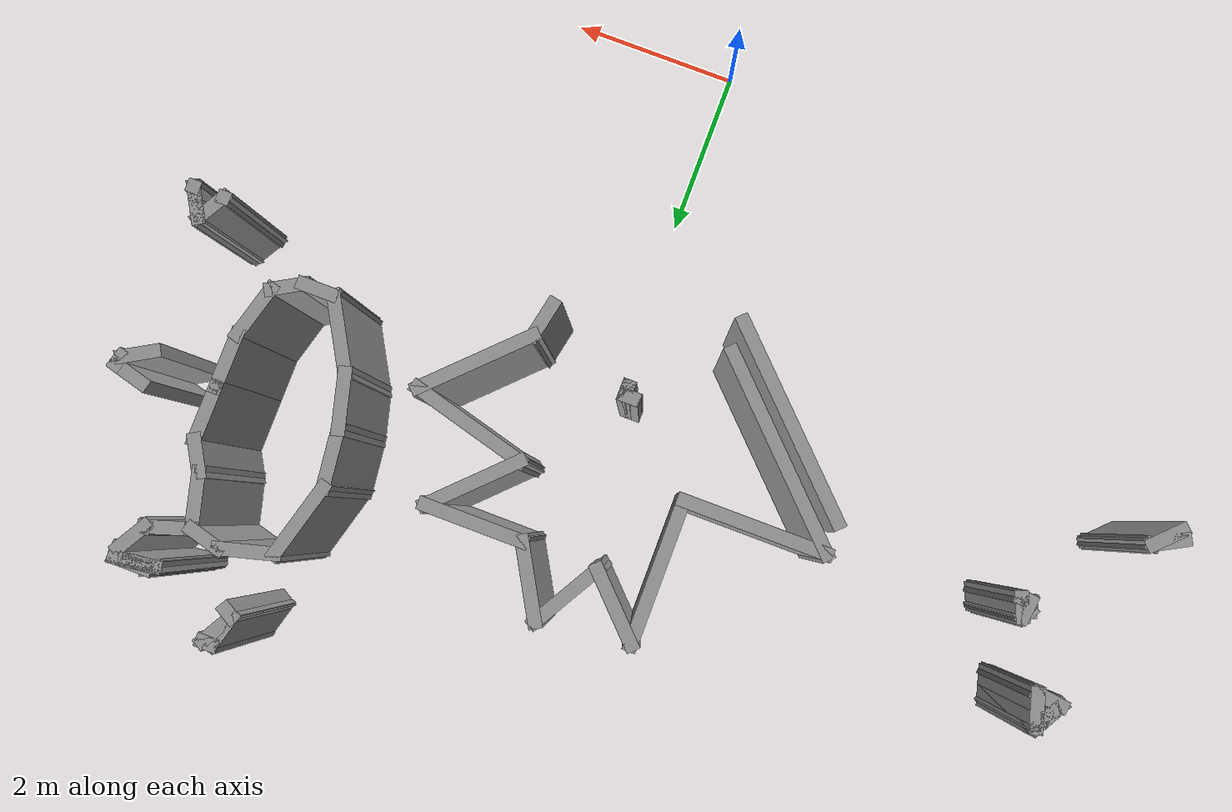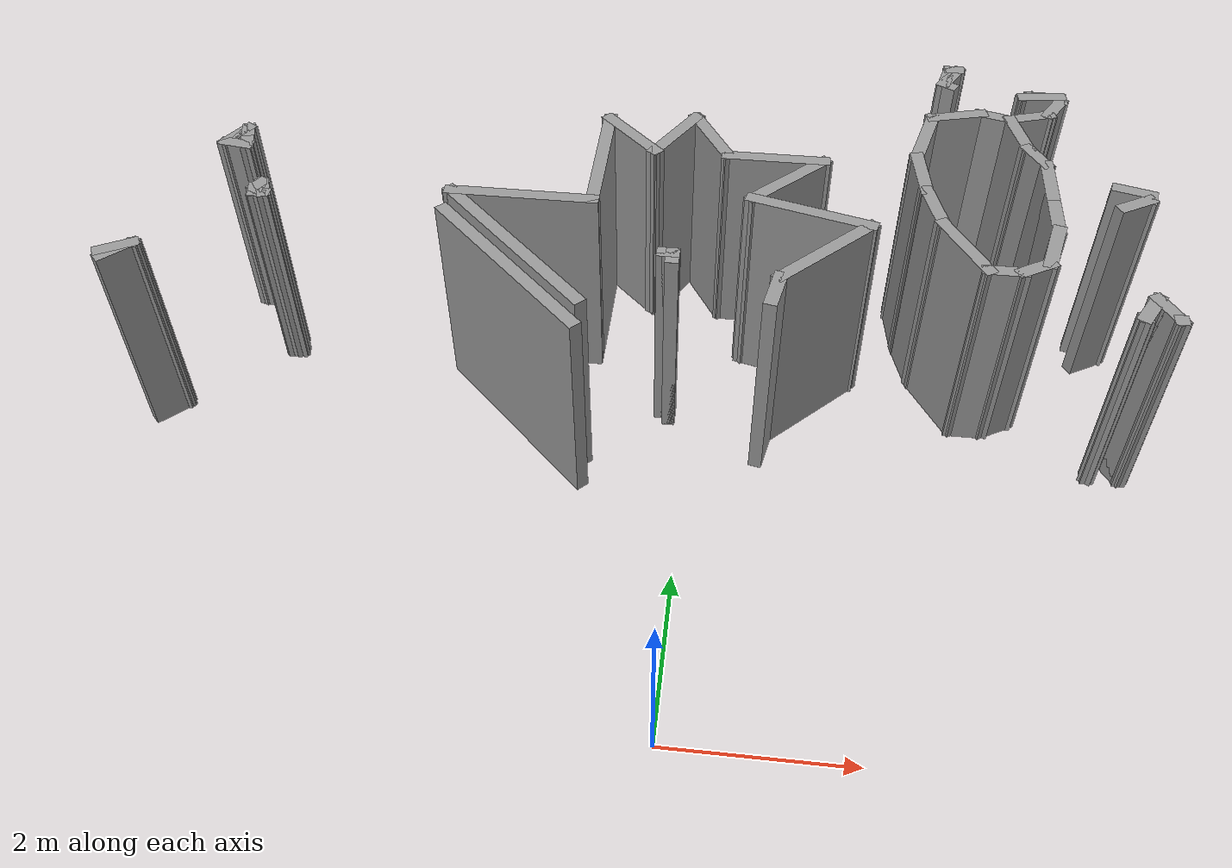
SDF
<sdf version="1.6">
 <model name="phenix">
  <pose>1.26432 -3.5 0 0 -0 4.71</pose>
  <link name="Wall_1">
   <collision name="Wall_1_Collision">
    <geometry><box><size>1.5 0.15 2.5</size></box></geometry>
    <pose>0 0 1.25 0 -0 0</pose>
   </collision>
   <visual name="Wall_1_Visual">
    <pose>0 0 1.25 0 -0 0</pose>
    <geometry><box><size>1.5 0.15 2.5</size></box></geometry>
    <material>
     <script><uri>file://media/materials/scripts/gazebo.material</uri><name>Gazebo/Grey</name></script>
     <ambient>1 1 1 1</ambient>
    </material>
    <meta><layer>0</layer></meta>
   </visual>
   <pose>-8.07336 0.091289 0 0 -0 2.35619</pose>
  </link>
  <link name="Wall_10">
   <collision name="Wall_10_Collision">
    <geometry><box><size>2.5 0.15 2.5</size></box></geometry>
    <pose>0 0 1.25 0 -0 0</pose>
   </collision>
   <visual name="Wall_10_Visual">
    <pose>0 0 1.25 0 -0 0</pose>
    <geometry><box><size>2.5 0.15 2.5</size></box></geometry>
    <material>
     <script><uri>file://media/materials/scripts/gazebo.material</uri><name>Gazebo/Grey</name></script>
     <ambient>1 1 1 1</ambient>
    </material>
    <meta><layer>0</layer></meta>
   </visual>
   <pose>-7.84807 -3.27779 0 0 -0 0.785398</pose>
  </link>
  <link name="Wall_100">
   <collision name="Wall_100_Collision">
    <geometry><box><size>0.5 0.15 2.5</size></box></geometry>
    <pose>0 0 1.25 0 -0 0</pose>
   </collision>
   <visual name="Wall_100_Visual">
    <pose>0 0 1.25 0 -0 0</pose>
    <geometry><box><size>0.5 0.15 2.5</size></box></geometry>
    <material>
     <script><uri>file://media/materials/scripts/gazebo.material</uri><name>Gazebo/Grey</name></script>
     <ambient>1 1 1 1</ambient>
    </material>
    <meta><layer>0</layer></meta>
   </visual>
   <pose>-7.51869 3.36784 0 0 -0 -0.523599</pose>
  </link>
  <link name="Wall_101">
   <collision name="Wall_101_Collision">
    <geometry><box><size>0.15 0.15 2.5</size></box></geometry>
    <pose>0 0 1.25 0 -0 0</pose>
   </collision>
   <visual name="Wall_101_Visual">
    <pose>0 0 1.25 0 -0 0</pose>
    <geometry><box><size>0.15 0.15 2.5</size></box></geometry>
    <material>
     <script><uri>file://media/materials/scripts/gazebo.material</uri><name>Gazebo/Grey</name></script>
     <ambient>1 1 1 1</ambient>
    </material>
    <meta><layer>0</layer></meta>
   </visual>
   <pose>-7.36714 3.28034 0 0 -0 0</pose>
  </link>
  <link name="Wall_115">
   <collision name="Wall_115_Collision">
    <geometry><box><size>0.25 0.15 2.5</size></box></geometry>
    <pose>0 0 1.25 0 -0 0</pose>
   </collision>
   <visual name="Wall_115_Visual">
    <pose>0 0 1.25 0 -0 0</pose>
    <geometry><box><size>0.25 0.15 2.5</size></box></geometry>
    <material>
     <script><uri>file://media/materials/scripts/gazebo.material</uri><name>Gazebo/Grey</name></script>
     <ambient>1 1 1 1</ambient>
    </material>
    <meta><layer>0</layer></meta>
   </visual>
   <pose>-9.55478 -6.74044 0 0 -0 0.261799</pose>
  </link>
  <link name="Wall_116">
   <collision name="Wall_116_Collision">
    <geometry><box><size>0.25 0.15 2.5</size></box></geometry>
    <pose>0 0 1.25 0 -0 0</pose>
   </collision>
   <visual name="Wall_116_Visual">
    <pose>0 0 1.25 0 -0 0</pose>
    <geometry><box><size>0.25 0.15 2.5</size></box></geometry>
    <material>
     <script><uri>file://media/materials/scripts/gazebo.material</uri><name>Gazebo/Grey</name></script>
     <ambient>1 1 1 1</ambient>
    </material>
    <meta><layer>0</layer></meta>
   </visual>
   <pose>-9.55478 -6.74044 0 0 -0 -2.87979</pose>
  </link>
  <link name="Wall_117">
   <collision name="Wall_117_Collision">
    <geometry><box><size>0.25 0.15 2.5</size></box></geometry>
    <pose>0 0 1.25 0 -0 0</pose>
   </collision>
   <visual name="Wall_117_Visual">
    <pose>0 0 1.25 0 -0 0</pose>
    <geometry><box><size>0.25 0.15 2.5</size></box></geometry>
    <material>
     <script><uri>file://media/materials/scripts/gazebo.material</uri><name>Gazebo/Grey</name></script>
     <ambient>1 1 1 1</ambient>
    </material>
    <meta><layer>0</layer></meta>
   </visual>
   <pose>-9.55478 -6.74044 0 0 -0 0.261799</pose>
  </link>
  <link name="Wall_118">
   <collision name="Wall_118_Collision">
    <geometry><box><size>0.25 0.15 2.5</size></box></geometry>
    <pose>0 0 1.25 0 -0 0</pose>
   </collision>
   <visual name="Wall_118_Visual">
    <pose>0 0 1.25 0 -0 0</pose>
    <geometry><box><size>0.25 0.15 2.5</size></box></geometry>
    <material>
     <script><uri>file://media/materials/scripts/gazebo.material</uri><name>Gazebo/Grey</name></script>
     <ambient>1 1 1 1</ambient>
    </material>
    <meta><layer>0</layer></meta>
   </visual>
   <pose>-9.55478 -6.74044 0 0 -0 -2.87979</pose>
  </link>
  <link name="Wall_119">
   <collision name="Wall_119_Collision">
    <geometry><box><size>0.5 0.15 2.5</size></box></geometry>
    <pose>0 0 1.25 0 -0 0</pose>
   </collision>
   <visual name="Wall_119_Visual">
    <pose>0 0 1.25 0 -0 0</pose>
    <geometry><box><size>0.5 0.15 2.5</size></box></geometry>
    <material>
     <script><uri>file://media/materials/scripts/gazebo.material</uri><name>Gazebo/Grey</name></script>
     <ambient>1 1 1 1</ambient>
    </material>
    <meta><layer>0</layer></meta>
   </visual>
   <pose>-9.45152 -6.84088 0 0 -0 -0.523599</pose>
  </link>
  <link name="Wall_12">
   <collision name="Wall_12_Collision">
    <geometry><box><size>2.5 0.15 2.5</size></box></geometry>
    <pose>0 0 1.25 0 -0 0</pose>
   </collision>
   <visual name="Wall_12_Visual">
    <pose>0 0 1.25 0 -0 0</pose>
    <geometry><box><size>2.5 0.15 2.5</size></box></geometry>
    <material>
     <script><uri>file://media/materials/scripts/gazebo.material</uri><name>Gazebo/Grey</name></script>
     <ambient>1 1 1 1</ambient>
    </material>
    <meta><layer>0</layer></meta>
   </visual>
   <pose>-7.49807 -3.27779 0 0 -0 -2.35619</pose>
  </link>
  <link name="Wall_120">
   <collision name="Wall_120_Collision">
    <geometry><box><size>0.5 0.15 2.5</size></box></geometry>
    <pose>0 0 1.25 0 -0 0</pose>
   </collision>
   <visual name="Wall_120_Visual">
    <pose>0 0 1.25 0 -0 0</pose>
    <geometry><box><size>0.5 0.15 2.5</size></box></geometry>
    <material>
     <script><uri>file://media/materials/scripts/gazebo.material</uri><name>Gazebo/Grey</name></script>
     <ambient>1 1 1 1</ambient>
    </material>
    <meta><layer>0</layer></meta>
   </visual>
   <pose>-9.45152 -6.84088 0 0 -0 2.61799</pose>
  </link>
  <link name="Wall_121">
   <collision name="Wall_121_Collision">
    <geometry><box><size>0.5 0.15 2.5</size></box></geometry>
    <pose>0 0 1.25 0 -0 0</pose>
   </collision>
   <visual name="Wall_121_Visual">
    <pose>0 0 1.25 0 -0 0</pose>
    <geometry><box><size>0.5 0.15 2.5</size></box></geometry>
    <material>
     <script><uri>file://media/materials/scripts/gazebo.material</uri><name>Gazebo/Grey</name></script>
     <ambient>1 1 1 1</ambient>
    </material>
    <meta><layer>0</layer></meta>
   </visual>
   <pose>-9.43404 -6.70809 0 0 -0 0.261799</pose>
  </link>
  <link name="Wall_122">
   <collision name="Wall_122_Collision">
    <geometry><box><size>0.417878 0.15 2.5</size></box></geometry>
    <pose>0 0 1.25 0 -0 0</pose>
   </collision>
   <visual name="Wall_122_Visual">
    <pose>0 0 1.25 0 -0 0</pose>
    <geometry><box><size>0.417878 0.15 2.5</size></box></geometry>
    <material>
     <script><uri>file://media/materials/scripts/gazebo.material</uri><name>Gazebo/Grey</name></script>
     <ambient>1 1 1 1</ambient>
    </material>
    <meta><layer>0</layer></meta>
   </visual>
   <pose>-9.28248 -6.79559 0 0 -0 -1.7017</pose>
  </link>
  <link name="Wall_124">
   <collision name="Wall_124_Collision">
    <geometry><box><size>0.25 0.15 2.5</size></box></geometry>
    <pose>0 0 1.25 0 -0 0</pose>
   </collision>
   <visual name="Wall_124_Visual">
    <pose>0 0 1.25 0 -0 0</pose>
    <geometry><box><size>0.25 0.15 2.5</size></box></geometry>
    <material>
     <script><uri>file://media/materials/scripts/gazebo.material</uri><name>Gazebo/Grey</name></script>
     <ambient>1 1 1 1</ambient>
    </material>
    <meta><layer>0</layer></meta>
   </visual>
   <pose>-8.53062 -6.28095 0 0 -0 -0.523599</pose>
  </link>
  <link name="Wall_125">
   <collision name="Wall_125_Collision">
    <geometry><box><size>0.25 0.15 2.5</size></box></geometry>
    <pose>0 0 1.25 0 -0 0</pose>
   </collision>
   <visual name="Wall_125_Visual">
    <pose>0 0 1.25 0 -0 0</pose>
    <geometry><box><size>0.25 0.15 2.5</size></box></geometry>
    <material>
     <script><uri>file://media/materials/scripts/gazebo.material</uri><name>Gazebo/Grey</name></script>
     <ambient>1 1 1 1</ambient>
    </material>
    <meta><layer>0</layer></meta>
   </visual>
   <pose>-8.43902 -6.29301 0 0 -0 0.261799</pose>
  </link>
  <link name="Wall_126">
   <collision name="Wall_126_Collision">
    <geometry><box><size>0.15 0.15 2.5</size></box></geometry>
    <pose>0 0 1.25 0 -0 0</pose>
   </collision>
   <visual name="Wall_126_Visual">
    <pose>0 0 1.25 0 -0 0</pose>
    <geometry><box><size>0.15 0.15 2.5</size></box></geometry>
    <material>
     <script><uri>file://media/materials/scripts/gazebo.material</uri><name>Gazebo/Grey</name></script>
     <ambient>1 1 1 1</ambient>
    </material>
    <meta><layer>0</layer></meta>
   </visual>
   <pose>-8.39072 -6.28007 0 0 -0 0</pose>
  </link>
  <link name="Wall_127">
   <collision name="Wall_127_Collision">
    <geometry><box><size>0.25 0.15 2.5</size></box></geometry>
    <pose>0 0 1.25 0 -0 0</pose>
   </collision>
   <visual name="Wall_127_Visual">
    <pose>0 0 1.25 0 -0 0</pose>
    <geometry><box><size>0.25 0.15 2.5</size></box></geometry>
    <material>
     <script><uri>file://media/materials/scripts/gazebo.material</uri><name>Gazebo/Grey</name></script>
     <ambient>1 1 1 1</ambient>
    </material>
    <meta><layer>0</layer></meta>
   </visual>
   <pose>-8.39072 -6.23007 0 0 -0 1.5708</pose>
  </link>
  <link name="Wall_128">
   <collision name="Wall_128_Collision">
    <geometry><box><size>0.25 0.15 2.5</size></box></geometry>
    <pose>0 0 1.25 0 -0 0</pose>
   </collision>
   <visual name="Wall_128_Visual">
    <pose>0 0 1.25 0 -0 0</pose>
    <geometry><box><size>0.25 0.15 2.5</size></box></geometry>
    <material>
     <script><uri>file://media/materials/scripts/gazebo.material</uri><name>Gazebo/Grey</name></script>
     <ambient>1 1 1 1</ambient>
    </material>
    <meta><layer>0</layer></meta>
   </visual>
   <pose>-8.39072 -6.23007 0 0 -0 -1.5708</pose>
  </link>
  <link name="Wall_129">
   <collision name="Wall_129_Collision">
    <geometry><box><size>0.334776 0.15 2.5</size></box></geometry>
    <pose>0 0 1.25 0 -0 0</pose>
   </collision>
   <visual name="Wall_129_Visual">
    <pose>0 0 1.25 0 -0 0</pose>
    <geometry><box><size>0.334776 0.15 2.5</size></box></geometry>
    <material>
     <script><uri>file://media/materials/scripts/gazebo.material</uri><name>Gazebo/Grey</name></script>
     <ambient>1 1 1 1</ambient>
    </material>
    <meta><layer>0</layer></meta>
   </visual>
   <pose>-8.48232 -6.26801 0 0 -0 3.01069</pose>
  </link>
  <link name="Wall_130">
   <collision name="Wall_130_Collision">
    <geometry><box><size>0.348289 0.15 2.5</size></box></geometry>
    <pose>0 0 1.25 0 -0 0</pose>
   </collision>
   <visual name="Wall_130_Visual">
    <pose>0 0 1.25 0 -0 0</pose>
    <geometry><box><size>0.348289 0.15 2.5</size></box></geometry>
    <material>
     <script><uri>file://media/materials/scripts/gazebo.material</uri><name>Gazebo/Grey</name></script>
     <ambient>1 1 1 1</ambient>
    </material>
    <meta><layer>0</layer></meta>
   </visual>
   <pose>-8.48232 -6.21801 0 0 -0 0.392699</pose>
  </link>
  <link name="Wall_133">
   <collision name="Wall_133_Collision">
    <geometry><box><size>0.5 0.15 2.5</size></box></geometry>
    <pose>0 0 1.25 0 -0 0</pose>
   </collision>
   <visual name="Wall_133_Visual">
    <pose>0 0 1.25 0 -0 0</pose>
    <geometry><box><size>0.5 0.15 2.5</size></box></geometry>
    <material>
     <script><uri>file://media/materials/scripts/gazebo.material</uri><name>Gazebo/Grey</name></script>
     <ambient>1 1 1 1</ambient>
    </material>
    <meta><layer>0</layer></meta>
   </visual>
   <pose>-7.25601 -7.42011 0 0 -0 2.35619</pose>
  </link>
  <link name="Wall_134">
   <collision name="Wall_134_Collision">
    <geometry><box><size>0.15 0.15 2.5</size></box></geometry>
    <pose>0 0 1.25 0 -0 0</pose>
   </collision>
   <visual name="Wall_134_Visual">
    <pose>0 0 1.25 0 -0 0</pose>
    <geometry><box><size>0.15 0.15 2.5</size></box></geometry>
    <material>
     <script><uri>file://media/materials/scripts/gazebo.material</uri><name>Gazebo/Grey</name></script>
     <ambient>1 1 1 1</ambient>
    </material>
    <meta><layer>0</layer></meta>
   </visual>
   <pose>-7.37975 -7.29637 0 0 -0 0</pose>
  </link>
  <link name="Wall_135">
   <collision name="Wall_135_Collision">
    <geometry><box><size>0.488205 0.15 2.5</size></box></geometry>
    <pose>0 0 1.25 0 -0 0</pose>
   </collision>
   <visual name="Wall_135_Visual">
    <pose>0 0 1.25 0 -0 0</pose>
    <geometry><box><size>0.488205 0.15 2.5</size></box></geometry>
    <material>
     <script><uri>file://media/materials/scripts/gazebo.material</uri><name>Gazebo/Grey</name></script>
     <ambient>1 1 1 1</ambient>
    </material>
    <meta><layer>0</layer></meta>
   </visual>
   <pose>-7.29931 -7.44511 0 0 -0 -1.07503</pose>
  </link>
  <link name="Wall_2">
   <collision name="Wall_2_Collision">
    <geometry><box><size>1.5 0.15 2.5</size></box></geometry>
    <pose>0 0 1.25 0 -0 0</pose>
   </collision>
   <visual name="Wall_2_Visual">
    <pose>0 0 1.25 0 -0 0</pose>
    <geometry><box><size>1.5 0.15 2.5</size></box></geometry>
    <material>
     <script><uri>file://media/materials/scripts/gazebo.material</uri><name>Gazebo/Grey</name></script>
     <ambient>1 1 1 1</ambient>
    </material>
    <meta><layer>0</layer></meta>
   </visual>
   <pose>-8.72536 -0.083414 0 0 -0 -1.8326</pose>
  </link>
  <link name="Wall_3">
   <collision name="Wall_3_Collision">
    <geometry><box><size>1.25 0.15 2.5</size></box></geometry>
    <pose>0 0 1.25 0 -0 0</pose>
   </collision>
   <visual name="Wall_3_Visual">
    <pose>0 0 1.25 0 -0 0</pose>
    <geometry><box><size>1.25 0.15 2.5</size></box></geometry>
    <material>
     <script><uri>file://media/materials/scripts/gazebo.material</uri><name>Gazebo/Grey</name></script>
     <ambient>1 1 1 1</ambient>
    </material>
    <meta><layer>0</layer></meta>
   </visual>
   <pose>-9.28897 -0.346505 0 0 -0 2.35619</pose>
  </link>
  <link name="Wall_36">
   <collision name="Wall_36_Collision">
    <geometry><box><size>0.542009 0.15 2.5</size></box></geometry>
    <pose>0 0 1.25 0 -0 0</pose>
   </collision>
   <visual name="Wall_36_Visual">
    <pose>0 0 1.25 0 -0 0</pose>
    <geometry><box><size>0.542009 0.15 2.5</size></box></geometry>
    <material>
     <script><uri>file://media/materials/scripts/gazebo.material</uri><name>Gazebo/Grey</name></script>
     <ambient>1 1 1 1</ambient>
    </material>
    <meta><layer>0</layer></meta>
   </visual>
   <pose>-7.40391 -0.424691 0 0 -0 2.94293</pose>
  </link>
  <link name="Wall_4">
   <collision name="Wall_4_Collision">
    <geometry><box><size>1.25 0.15 2.5</size></box></geometry>
    <pose>0 0 1.25 0 -0 0</pose>
   </collision>
   <visual name="Wall_4_Visual">
    <pose>0 0 1.25 0 -0 0</pose>
    <geometry><box><size>1.25 0.15 2.5</size></box></geometry>
    <material>
     <script><uri>file://media/materials/scripts/gazebo.material</uri><name>Gazebo/Grey</name></script>
     <ambient>1 1 1 1</ambient>
    </material>
    <meta><layer>0</layer></meta>
   </visual>
   <pose>-9.67788 -0.507597 0 0 -0 -1.5708</pose>
  </link>
  <link name="Wall_5">
   <collision name="Wall_5_Collision">
    <geometry><box><size>1 0.15 2.5</size></box></geometry>
    <pose>0 0 1.25 0 -0 0</pose>
   </collision>
   <visual name="Wall_5_Visual">
    <pose>0 0 1.25 0 -0 0</pose>
    <geometry><box><size>1 0.15 2.5</size></box></geometry>
    <material>
     <script><uri>file://media/materials/scripts/gazebo.material</uri><name>Gazebo/Grey</name></script>
     <ambient>1 1 1 1</ambient>
    </material>
    <meta><layer>0</layer></meta>
   </visual>
   <pose>-10.0459 -1.2701 0 0 -0 -2.61799</pose>
  </link>
  <link name="Wall_56">
   <collision name="Wall_56_Collision">
    <geometry><box><size>0.25 0.15 2.5</size></box></geometry>
    <pose>0 0 1.25 0 -0 0</pose>
   </collision>
   <visual name="Wall_56_Visual">
    <pose>0 0 1.25 0 -0 0</pose>
    <geometry><box><size>0.25 0.15 2.5</size></box></geometry>
    <material>
     <script><uri>file://media/materials/scripts/gazebo.material</uri><name>Gazebo/Grey</name></script>
     <ambient>1 1 1 1</ambient>
    </material>
    <meta><layer>0</layer></meta>
   </visual>
   <pose>-7.80391 -1.53104 0 0 -0 0</pose>
  </link>
  <link name="Wall_57">
   <collision name="Wall_57_Collision">
    <geometry><box><size>0.25 0.15 2.5</size></box></geometry>
    <pose>0 0 1.25 0 -0 0</pose>
   </collision>
   <visual name="Wall_57_Visual">
    <pose>0 0 1.25 0 -0 0</pose>
    <geometry><box><size>0.25 0.15 2.5</size></box></geometry>
    <material>
     <script><uri>file://media/materials/scripts/gazebo.material</uri><name>Gazebo/Grey</name></script>
     <ambient>1 1 1 1</ambient>
    </material>
    <meta><layer>0</layer></meta>
   </visual>
   <pose>-7.80391 -1.53104 0 0 -0 3.14159</pose>
  </link>
  <link name="Wall_58">
   <collision name="Wall_58_Collision">
    <geometry><box><size>0.25 0.15 2.5</size></box></geometry>
    <pose>0 0 1.25 0 -0 0</pose>
   </collision>
   <visual name="Wall_58_Visual">
    <pose>0 0 1.25 0 -0 0</pose>
    <geometry><box><size>0.25 0.15 2.5</size></box></geometry>
    <material>
     <script><uri>file://media/materials/scripts/gazebo.material</uri><name>Gazebo/Grey</name></script>
     <ambient>1 1 1 1</ambient>
    </material>
    <meta><layer>0</layer></meta>
   </visual>
   <pose>-7.85391 -1.58104 0 0 -0 -1.5708</pose>
  </link>
  <link name="Wall_59">
   <collision name="Wall_59_Collision">
    <geometry><box><size>0.15 0.15 2.5</size></box></geometry>
    <pose>0 0 1.25 0 -0 0</pose>
   </collision>
   <visual name="Wall_59_Visual">
    <pose>0 0 1.25 0 -0 0</pose>
    <geometry><box><size>0.15 0.15 2.5</size></box></geometry>
    <material>
     <script><uri>file://media/materials/scripts/gazebo.material</uri><name>Gazebo/Grey</name></script>
     <ambient>1 1 1 1</ambient>
    </material>
    <meta><layer>0</layer></meta>
   </visual>
   <pose>-7.85391 -1.63104 0 0 -0 0</pose>
  </link>
  <link name="Wall_6">
   <collision name="Wall_6_Collision">
    <geometry><box><size>1 0.15 2.5</size></box></geometry>
    <pose>0 0 1.25 0 -0 0</pose>
   </collision>
   <visual name="Wall_6_Visual">
    <pose>0 0 1.25 0 -0 0</pose>
    <geometry><box><size>1 0.15 2.5</size></box></geometry>
    <material>
     <script><uri>file://media/materials/scripts/gazebo.material</uri><name>Gazebo/Grey</name></script>
     <ambient>1 1 1 1</ambient>
    </material>
    <meta><layer>0</layer></meta>
   </visual>
   <pose>-10.0459 -1.6951 0 0 -0 -0.523599</pose>
  </link>
  <link name="Wall_61">
   <collision name="Wall_61_Collision">
    <geometry><box><size>1 0.15 2.5</size></box></geometry>
    <pose>0 0 1.25 0 -0 0</pose>
   </collision>
   <visual name="Wall_61_Visual">
    <pose>0 0 1.25 0 -0 0</pose>
    <geometry><box><size>1 0.15 2.5</size></box></geometry>
    <material>
     <script><uri>file://media/materials/scripts/gazebo.material</uri><name>Gazebo/Grey</name></script>
     <ambient>1 1 1 1</ambient>
    </material>
    <meta><layer>0</layer></meta>
   </visual>
   <pose>-10.3026 1.22452 0 0 -0 2.87979</pose>
  </link>
  <link name="Wall_62">
   <collision name="Wall_62_Collision">
    <geometry><box><size>0.75 0.15 2.5</size></box></geometry>
    <pose>0 0 1.25 0 -0 0</pose>
   </collision>
   <visual name="Wall_62_Visual">
    <pose>0 0 1.25 0 -0 0</pose>
    <geometry><box><size>0.75 0.15 2.5</size></box></geometry>
    <material>
     <script><uri>file://media/materials/scripts/gazebo.material</uri><name>Gazebo/Grey</name></script>
     <ambient>1 1 1 1</ambient>
    </material>
    <meta><layer>0</layer></meta>
   </visual>
   <pose>-10.7907 1.62429 0 0 -0 1.8326</pose>
  </link>
  <link name="Wall_63">
   <collision name="Wall_63_Collision">
    <geometry><box><size>0.5 0.15 2.5</size></box></geometry>
    <pose>0 0 1.25 0 -0 0</pose>
   </collision>
   <visual name="Wall_63_Visual">
    <pose>0 0 1.25 0 -0 0</pose>
    <geometry><box><size>0.5 0.15 2.5</size></box></geometry>
    <material>
     <script><uri>file://media/materials/scripts/gazebo.material</uri><name>Gazebo/Grey</name></script>
     <ambient>1 1 1 1</ambient>
    </material>
    <meta><layer>0</layer></meta>
   </visual>
   <pose>-10.8231 2.08311 0 0 -0 1.309</pose>
  </link>
  <link name="Wall_65">
   <collision name="Wall_65_Collision">
    <geometry><box><size>0.75 0.15 2.5</size></box></geometry>
    <pose>0 0 1.25 0 -0 0</pose>
   </collision>
   <visual name="Wall_65_Visual">
    <pose>0 0 1.25 0 -0 0</pose>
    <geometry><box><size>0.75 0.15 2.5</size></box></geometry>
    <material>
     <script><uri>file://media/materials/scripts/gazebo.material</uri><name>Gazebo/Grey</name></script>
     <ambient>1 1 1 1</ambient>
    </material>
    <meta><layer>0</layer></meta>
   </visual>
   <pose>-10.488 2.32979 0 0 -0 0.261799</pose>
  </link>
  <link name="Wall_66">
   <collision name="Wall_66_Collision">
    <geometry><box><size>0.5 0.15 2.5</size></box></geometry>
    <pose>0 0 1.25 0 -0 0</pose>
   </collision>
   <visual name="Wall_66_Visual">
    <pose>0 0 1.25 0 -0 0</pose>
    <geometry><box><size>0.5 0.15 2.5</size></box></geometry>
    <material>
     <script><uri>file://media/materials/scripts/gazebo.material</uri><name>Gazebo/Grey</name></script>
     <ambient>1 1 1 1</ambient>
    </material>
    <meta><layer>0</layer></meta>
   </visual>
   <pose>-10.0467 2.49493 0 0 -0 0.523599</pose>
  </link>
  <link name="Wall_67">
   <collision name="Wall_67_Collision">
    <geometry><box><size>0.75 0.15 2.5</size></box></geometry>
    <pose>0 0 1.25 0 -0 0</pose>
   </collision>
   <visual name="Wall_67_Visual">
    <pose>0 0 1.25 0 -0 0</pose>
    <geometry><box><size>0.75 0.15 2.5</size></box></geometry>
    <material>
     <script><uri>file://media/materials/scripts/gazebo.material</uri><name>Gazebo/Grey</name></script>
     <ambient>1 1 1 1</ambient>
    </material>
    <meta><layer>0</layer></meta>
   </visual>
   <pose>-9.59512 2.58243 0 0 -0 0</pose>
  </link>
  <link name="Wall_68">
   <collision name="Wall_68_Collision">
    <geometry><box><size>0.75 0.15 2.5</size></box></geometry>
    <pose>0 0 1.25 0 -0 0</pose>
   </collision>
   <visual name="Wall_68_Visual">
    <pose>0 0 1.25 0 -0 0</pose>
    <geometry><box><size>0.75 0.15 2.5</size></box></geometry>
    <material>
     <script><uri>file://media/materials/scripts/gazebo.material</uri><name>Gazebo/Grey</name></script>
     <ambient>1 1 1 1</ambient>
    </material>
    <meta><layer>0</layer></meta>
   </visual>
   <pose>-8.99512 2.58243 0 0 -0 0</pose>
  </link>
  <link name="Wall_69">
   <collision name="Wall_69_Collision">
    <geometry><box><size>0.75 0.15 2.5</size></box></geometry>
    <pose>0 0 1.25 0 -0 0</pose>
   </collision>
   <visual name="Wall_69_Visual">
    <pose>0 0 1.25 0 -0 0</pose>
    <geometry><box><size>0.75 0.15 2.5</size></box></geometry>
    <material>
     <script><uri>file://media/materials/scripts/gazebo.material</uri><name>Gazebo/Grey</name></script>
     <ambient>1 1 1 1</ambient>
    </material>
    <meta><layer>0</layer></meta>
   </visual>
   <pose>-8.40535 2.50479 0 0 -0 -0.261799</pose>
  </link>
  <link name="Wall_7">
   <collision name="Wall_7_Collision">
    <geometry><box><size>1 0.15 2.5</size></box></geometry>
    <pose>0 0 1.25 0 -0 0</pose>
   </collision>
   <visual name="Wall_7_Visual">
    <pose>0 0 1.25 0 -0 0</pose>
    <geometry><box><size>1 0.15 2.5</size></box></geometry>
    <material>
     <script><uri>file://media/materials/scripts/gazebo.material</uri><name>Gazebo/Grey</name></script>
     <ambient>1 1 1 1</ambient>
    </material>
    <meta><layer>0</layer></meta>
   </visual>
   <pose>-9.9784 -2.20812 0 0 -0 -2.35619</pose>
  </link>
  <link name="Wall_70">
   <collision name="Wall_70_Collision">
    <geometry><box><size>0.5 0.15 2.5</size></box></geometry>
    <pose>0 0 1.25 0 -0 0</pose>
   </collision>
   <visual name="Wall_70_Visual">
    <pose>0 0 1.25 0 -0 0</pose>
    <geometry><box><size>0.5 0.15 2.5</size></box></geometry>
    <material>
     <script><uri>file://media/materials/scripts/gazebo.material</uri><name>Gazebo/Grey</name></script>
     <ambient>1 1 1 1</ambient>
    </material>
    <meta><layer>0</layer></meta>
   </visual>
   <pose>-8.02807 2.27559 0 0 -0 -1.0472</pose>
  </link>
  <link name="Wall_71">
   <collision name="Wall_71_Collision">
    <geometry><box><size>0.5 0.15 2.5</size></box></geometry>
    <pose>0 0 1.25 0 -0 0</pose>
   </collision>
   <visual name="Wall_71_Visual">
    <pose>0 0 1.25 0 -0 0</pose>
    <geometry><box><size>0.5 0.15 2.5</size></box></geometry>
    <material>
     <script><uri>file://media/materials/scripts/gazebo.material</uri><name>Gazebo/Grey</name></script>
     <ambient>1 1 1 1</ambient>
    </material>
    <meta><layer>0</layer></meta>
   </visual>
   <pose>-7.94057 1.94903 0 0 -0 -1.5708</pose>
  </link>
  <link name="Wall_72">
   <collision name="Wall_72_Collision">
    <geometry><box><size>1 0.15 2.5</size></box></geometry>
    <pose>0 0 1.25 0 -0 0</pose>
   </collision>
   <visual name="Wall_72_Visual">
    <pose>0 0 1.25 0 -0 0</pose>
    <geometry><box><size>1 0.15 2.5</size></box></geometry>
    <material>
     <script><uri>file://media/materials/scripts/gazebo.material</uri><name>Gazebo/Grey</name></script>
     <ambient>1 1 1 1</ambient>
    </material>
    <meta><layer>0</layer></meta>
   </visual>
   <pose>-8.30863 1.56153 0 0 -0 -2.61799</pose>
  </link>
  <link name="Wall_73">
   <collision name="Wall_73_Collision">
    <geometry><box><size>0.75 0.15 2.5</size></box></geometry>
    <pose>0 0 1.25 0 -0 0</pose>
   </collision>
   <visual name="Wall_73_Visual">
    <pose>0 0 1.25 0 -0 0</pose>
    <geometry><box><size>0.75 0.15 2.5</size></box></geometry>
    <material>
     <script><uri>file://media/materials/scripts/gazebo.material</uri><name>Gazebo/Grey</name></script>
     <ambient>1 1 1 1</ambient>
    </material>
    <meta><layer>0</layer></meta>
   </visual>
   <pose>-8.96647 1.27139 0 0 -0 -2.87979</pose>
  </link>
  <link name="Wall_74">
   <collision name="Wall_74_Collision">
    <geometry><box><size>0.790718 0.15 2.5</size></box></geometry>
    <pose>0 0 1.25 0 -0 0</pose>
   </collision>
   <visual name="Wall_74_Visual">
    <pose>0 0 1.25 0 -0 0</pose>
    <geometry><box><size>0.790718 0.15 2.5</size></box></geometry>
    <material>
     <script><uri>file://media/materials/scripts/gazebo.material</uri><name>Gazebo/Grey</name></script>
     <ambient>1 1 1 1</ambient>
    </material>
    <meta><layer>0</layer></meta>
   </visual>
   <pose>-9.57415 1.15413 0 0 -0 -3.01762</pose>
  </link>
  <link name="Wall_76">
   <collision name="Wall_76_Collision">
    <geometry><box><size>0.5 0.15 2.5</size></box></geometry>
    <pose>0 0 1.25 0 -0 0</pose>
   </collision>
   <visual name="Wall_76_Visual">
    <pose>0 0 1.25 0 -0 0</pose>
    <geometry><box><size>0.5 0.15 2.5</size></box></geometry>
    <material>
     <script><uri>file://media/materials/scripts/gazebo.material</uri><name>Gazebo/Grey</name></script>
     <ambient>1 1 1 1</ambient>
    </material>
    <meta><layer>0</layer></meta>
   </visual>
   <pose>-11.6481 1.55656 0 0 -0 2.87979</pose>
  </link>
  <link name="Wall_77">
   <collision name="Wall_77_Collision">
    <geometry><box><size>0.15 0.15 2.5</size></box></geometry>
    <pose>0 0 1.25 0 -0 0</pose>
   </collision>
   <visual name="Wall_77_Visual">
    <pose>0 0 1.25 0 -0 0</pose>
    <geometry><box><size>0.15 0.15 2.5</size></box></geometry>
    <material>
     <script><uri>file://media/materials/scripts/gazebo.material</uri><name>Gazebo/Grey</name></script>
     <ambient>1 1 1 1</ambient>
    </material>
    <meta><layer>0</layer></meta>
   </visual>
   <pose>-11.8171 1.60185 0 0 -0 0</pose>
  </link>
  <link name="Wall_78">
   <collision name="Wall_78_Collision">
    <geometry><box><size>0.15 0.15 2.5</size></box></geometry>
    <pose>0 0 1.25 0 -0 0</pose>
   </collision>
   <visual name="Wall_78_Visual">
    <pose>0 0 1.25 0 -0 0</pose>
    <geometry><box><size>0.15 0.15 2.5</size></box></geometry>
    <material>
     <script><uri>file://media/materials/scripts/gazebo.material</uri><name>Gazebo/Grey</name></script>
     <ambient>1 1 1 1</ambient>
    </material>
    <meta><layer>0</layer></meta>
   </visual>
   <pose>-11.8171 1.60185 0 0 -0 0</pose>
  </link>
  <link name="Wall_79">
   <collision name="Wall_79_Collision">
    <geometry><box><size>0.25 0.15 2.5</size></box></geometry>
    <pose>0 0 1.25 0 -0 0</pose>
   </collision>
   <visual name="Wall_79_Visual">
    <pose>0 0 1.25 0 -0 0</pose>
    <geometry><box><size>0.25 0.15 2.5</size></box></geometry>
    <material>
     <script><uri>file://media/materials/scripts/gazebo.material</uri><name>Gazebo/Grey</name></script>
     <ambient>1 1 1 1</ambient>
    </material>
    <meta><layer>0</layer></meta>
   </visual>
   <pose>-11.8171 1.65185 0 0 -0 1.5708</pose>
  </link>
  <link name="Wall_8">
   <collision name="Wall_8_Collision">
    <geometry><box><size>1.75 0.15 2.5</size></box></geometry>
    <pose>0 0 1.25 0 -0 0</pose>
   </collision>
   <visual name="Wall_8_Visual">
    <pose>0 0 1.25 0 -0 0</pose>
    <geometry><box><size>1.75 0.15 2.5</size></box></geometry>
    <material>
     <script><uri>file://media/materials/scripts/gazebo.material</uri><name>Gazebo/Grey</name></script>
     <ambient>1 1 1 1</ambient>
    </material>
    <meta><layer>0</layer></meta>
   </visual>
   <pose>-9.47892 -2.50864 0 0 -0 0</pose>
  </link>
  <link name="Wall_80">
   <collision name="Wall_80_Collision">
    <geometry><box><size>0.538094 0.15 2.5</size></box></geometry>
    <pose>0 0 1.25 0 -0 0</pose>
   </collision>
   <visual name="Wall_80_Visual">
    <pose>0 0 1.25 0 -0 0</pose>
    <geometry><box><size>0.538094 0.15 2.5</size></box></geometry>
    <material>
     <script><uri>file://media/materials/scripts/gazebo.material</uri><name>Gazebo/Grey</name></script>
     <ambient>1 1 1 1</ambient>
    </material>
    <meta><layer>0</layer></meta>
   </visual>
   <pose>-11.6481 1.60656 0 0 -0 -0.513333</pose>
  </link>
  <link name="Wall_81">
   <collision name="Wall_81_Collision">
    <geometry><box><size>0.25 0.15 2.5</size></box></geometry>
    <pose>0 0 1.25 0 -0 0</pose>
   </collision>
   <visual name="Wall_81_Visual">
    <pose>0 0 1.25 0 -0 0</pose>
    <geometry><box><size>0.25 0.15 2.5</size></box></geometry>
    <material>
     <script><uri>file://media/materials/scripts/gazebo.material</uri><name>Gazebo/Grey</name></script>
     <ambient>1 1 1 1</ambient>
    </material>
    <meta><layer>0</layer></meta>
   </visual>
   <pose>-11.454 1.55457 0 0 -0 1.0472</pose>
  </link>
  <link name="Wall_83">
   <collision name="Wall_83_Collision">
    <geometry><box><size>0.25 0.15 2.5</size></box></geometry>
    <pose>0 0 1.25 0 -0 0</pose>
   </collision>
   <visual name="Wall_83_Visual">
    <pose>0 0 1.25 0 -0 0</pose>
    <geometry><box><size>0.25 0.15 2.5</size></box></geometry>
    <material>
     <script><uri>file://media/materials/scripts/gazebo.material</uri><name>Gazebo/Grey</name></script>
     <ambient>1 1 1 1</ambient>
    </material>
    <meta><layer>0</layer></meta>
   </visual>
   <pose>-11.3057 2.50677 0 0 -0 2.0944</pose>
  </link>
  <link name="Wall_84">
   <collision name="Wall_84_Collision">
    <geometry><box><size>0.5 0.15 2.5</size></box></geometry>
    <pose>0 0 1.25 0 -0 0</pose>
   </collision>
   <visual name="Wall_84_Visual">
    <pose>0 0 1.25 0 -0 0</pose>
    <geometry><box><size>0.5 0.15 2.5</size></box></geometry>
    <material>
     <script><uri>file://media/materials/scripts/gazebo.material</uri><name>Gazebo/Grey</name></script>
     <ambient>1 1 1 1</ambient>
    </material>
    <meta><layer>0</layer></meta>
   </visual>
   <pose>-11.3307 2.72507 0 0 -0 1.5708</pose>
  </link>
  <link name="Wall_85">
   <collision name="Wall_85_Collision">
    <geometry><box><size>0.15 0.15 2.5</size></box></geometry>
    <pose>0 0 1.25 0 -0 0</pose>
   </collision>
   <visual name="Wall_85_Visual">
    <pose>0 0 1.25 0 -0 0</pose>
    <geometry><box><size>0.15 0.15 2.5</size></box></geometry>
    <material>
     <script><uri>file://media/materials/scripts/gazebo.material</uri><name>Gazebo/Grey</name></script>
     <ambient>1 1 1 1</ambient>
    </material>
    <meta><layer>0</layer></meta>
   </visual>
   <pose>-11.3307 2.90007 0 0 -0 0</pose>
  </link>
  <link name="Wall_86">
   <collision name="Wall_86_Collision">
    <geometry><box><size>0.589456 0.15 2.5</size></box></geometry>
    <pose>0 0 1.25 0 -0 0</pose>
   </collision>
   <visual name="Wall_86_Visual">
    <pose>0 0 1.25 0 -0 0</pose>
    <geometry><box><size>0.589456 0.15 2.5</size></box></geometry>
    <material>
     <script><uri>file://media/materials/scripts/gazebo.material</uri><name>Gazebo/Grey</name></script>
     <ambient>1 1 1 1</ambient>
    </material>
    <meta><layer>0</layer></meta>
   </visual>
   <pose>-11.3057 2.68177 0 0 -0 -1.45677</pose>
  </link>
  <link name="Wall_87">
   <collision name="Wall_87_Collision">
    <geometry><box><size>0.589456 0.15 2.5</size></box></geometry>
    <pose>0 0 1.25 0 -0 0</pose>
   </collision>
   <visual name="Wall_87_Visual">
    <pose>0 0 1.25 0 -0 0</pose>
    <geometry><box><size>0.589456 0.15 2.5</size></box></geometry>
    <material>
     <script><uri>file://media/materials/scripts/gazebo.material</uri><name>Gazebo/Grey</name></script>
     <ambient>1 1 1 1</ambient>
    </material>
    <meta><layer>0</layer></meta>
   </visual>
   <pose>-11.3057 2.68177 0 0 -0 1.68482</pose>
  </link>
  <link name="Wall_88">
   <collision name="Wall_88_Collision">
    <geometry><box><size>0.25 0.15 2.5</size></box></geometry>
    <pose>0 0 1.25 0 -0 0</pose>
   </collision>
   <visual name="Wall_88_Visual">
    <pose>0 0 1.25 0 -0 0</pose>
    <geometry><box><size>0.25 0.15 2.5</size></box></geometry>
    <material>
     <script><uri>file://media/materials/scripts/gazebo.material</uri><name>Gazebo/Grey</name></script>
     <ambient>1 1 1 1</ambient>
    </material>
    <meta><layer>0</layer></meta>
   </visual>
   <pose>-11.2807 2.90007 0 0 -0 0</pose>
  </link>
  <link name="Wall_89">
   <collision name="Wall_89_Collision">
    <geometry><box><size>0.5 0.15 2.5</size></box></geometry>
    <pose>0 0 1.25 0 -0 0</pose>
   </collision>
   <visual name="Wall_89_Visual">
    <pose>0 0 1.25 0 -0 0</pose>
    <geometry><box><size>0.5 0.15 2.5</size></box></geometry>
    <material>
     <script><uri>file://media/materials/scripts/gazebo.material</uri><name>Gazebo/Grey</name></script>
     <ambient>1 1 1 1</ambient>
    </material>
    <meta><layer>0</layer></meta>
   </visual>
   <pose>-11.0791 2.81257 0 0 -0 -0.523599</pose>
  </link>
  <link name="Wall_9">
   <collision name="Wall_9_Collision">
    <geometry><box><size>1.75 0.15 2.5</size></box></geometry>
    <pose>0 0 1.25 0 -0 0</pose>
   </collision>
   <visual name="Wall_9_Visual">
    <pose>0 0 1.25 0 -0 0</pose>
    <geometry><box><size>1.75 0.15 2.5</size></box></geometry>
    <material>
     <script><uri>file://media/materials/scripts/gazebo.material</uri><name>Gazebo/Grey</name></script>
     <ambient>1 1 1 1</ambient>
    </material>
    <meta><layer>0</layer></meta>
   </visual>
   <pose>-8.67892 -3.30864 0 0 -0 -1.5708</pose>
  </link>
  <link name="Wall_90">
   <collision name="Wall_90_Collision">
    <geometry><box><size>0.15 0.15 2.5</size></box></geometry>
    <pose>0 0 1.25 0 -0 0</pose>
   </collision>
   <visual name="Wall_90_Visual">
    <pose>0 0 1.25 0 -0 0</pose>
    <geometry><box><size>0.15 0.15 2.5</size></box></geometry>
    <material>
     <script><uri>file://media/materials/scripts/gazebo.material</uri><name>Gazebo/Grey</name></script>
     <ambient>1 1 1 1</ambient>
    </material>
    <meta><layer>0</layer></meta>
   </visual>
   <pose>-10.9276 2.72507 0 0 -0 0</pose>
  </link>
  <link name="Wall_91">
   <collision name="Wall_91_Collision">
    <geometry><box><size>0.646077 0.15 2.5</size></box></geometry>
    <pose>0 0 1.25 0 -0 0</pose>
   </collision>
   <visual name="Wall_91_Visual">
    <pose>0 0 1.25 0 -0 0</pose>
    <geometry><box><size>0.646077 0.15 2.5</size></box></geometry>
    <material>
     <script><uri>file://media/materials/scripts/gazebo.material</uri><name>Gazebo/Grey</name></script>
     <ambient>1 1 1 1</ambient>
    </material>
    <meta><layer>0</layer></meta>
   </visual>
   <pose>-10.8527 2.48861 0 0 -0 -1.26409</pose>
  </link>
  <link name="Wall_93">
   <collision name="Wall_93_Collision">
    <geometry><box><size>0.5 0.15 2.5</size></box></geometry>
    <pose>0 0 1.25 0 -0 0</pose>
   </collision>
   <visual name="Wall_93_Visual">
    <pose>0 0 1.25 0 -0 0</pose>
    <geometry><box><size>0.5 0.15 2.5</size></box></geometry>
    <material>
     <script><uri>file://media/materials/scripts/gazebo.material</uri><name>Gazebo/Grey</name></script>
     <ambient>1 1 1 1</ambient>
    </material>
    <meta><layer>0</layer></meta>
   </visual>
   <pose>-9.48968 3.50535 0 0 -0 1.309</pose>
  </link>
  <link name="Wall_94">
   <collision name="Wall_94_Collision">
    <geometry><box><size>0.25 0.15 2.5</size></box></geometry>
    <pose>0 0 1.25 0 -0 0</pose>
   </collision>
   <visual name="Wall_94_Visual">
    <pose>0 0 1.25 0 -0 0</pose>
    <geometry><box><size>0.25 0.15 2.5</size></box></geometry>
    <material>
     <script><uri>file://media/materials/scripts/gazebo.material</uri><name>Gazebo/Grey</name></script>
     <ambient>1 1 1 1</ambient>
    </material>
    <meta><layer>0</layer></meta>
   </visual>
   <pose>-9.39609 3.66145 0 0 -0 -0.261799</pose>
  </link>
  <link name="Wall_95">
   <collision name="Wall_95_Collision">
    <geometry><box><size>0.5 0.15 2.5</size></box></geometry>
    <pose>0 0 1.25 0 -0 0</pose>
   </collision>
   <visual name="Wall_95_Visual">
    <pose>0 0 1.25 0 -0 0</pose>
    <geometry><box><size>0.5 0.15 2.5</size></box></geometry>
    <material>
     <script><uri>file://media/materials/scripts/gazebo.material</uri><name>Gazebo/Grey</name></script>
     <ambient>1 1 1 1</ambient>
    </material>
    <meta><layer>0</layer></meta>
   </visual>
   <pose>-9.26029 3.49695 0 0 -0 -1.0472</pose>
  </link>
  <link name="Wall_97">
   <collision name="Wall_97_Collision">
    <geometry><box><size>0.5 0.15 2.5</size></box></geometry>
    <pose>0 0 1.25 0 -0 0</pose>
   </collision>
   <visual name="Wall_97_Visual">
    <pose>0 0 1.25 0 -0 0</pose>
    <geometry><box><size>0.5 0.15 2.5</size></box></geometry>
    <material>
     <script><uri>file://media/materials/scripts/gazebo.material</uri><name>Gazebo/Grey</name></script>
     <ambient>1 1 1 1</ambient>
    </material>
    <meta><layer>0</layer></meta>
   </visual>
   <pose>-7.51869 3.54284 0 0 -0 0.523599</pose>
  </link>
  <link name="Wall_98">
   <collision name="Wall_98_Collision">
    <geometry><box><size>0.15 0.15 2.5</size></box></geometry>
    <pose>0 0 1.25 0 -0 0</pose>
   </collision>
   <visual name="Wall_98_Visual">
    <pose>0 0 1.25 0 -0 0</pose>
    <geometry><box><size>0.15 0.15 2.5</size></box></geometry>
    <material>
     <script><uri>file://media/materials/scripts/gazebo.material</uri><name>Gazebo/Grey</name></script>
     <ambient>1 1 1 1</ambient>
    </material>
    <meta><layer>0</layer></meta>
   </visual>
   <pose>-7.36714 3.63034 0 0 -0 0</pose>
  </link>
  <link name="Wall_99">
   <collision name="Wall_99_Collision">
    <geometry><box><size>0.5 0.15 2.5</size></box></geometry>
    <pose>0 0 1.25 0 -0 0</pose>
   </collision>
   <visual name="Wall_99_Visual">
    <pose>0 0 1.25 0 -0 0</pose>
    <geometry><box><size>0.5 0.15 2.5</size></box></geometry>
    <material>
     <script><uri>file://media/materials/scripts/gazebo.material</uri><name>Gazebo/Grey</name></script>
     <ambient>1 1 1 1</ambient>
    </material>
    <meta><layer>0</layer></meta>
   </visual>
   <pose>-7.51869 3.54284 0 0 -0 -2.61799</pose>
  </link>
  <static>1</static>
 </model>
</sdf>
